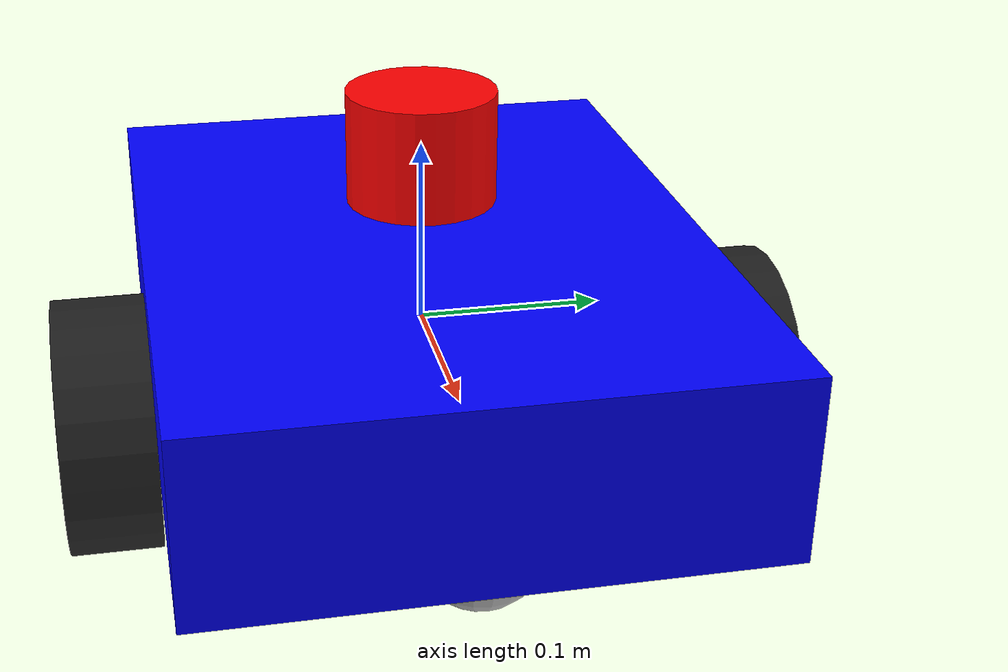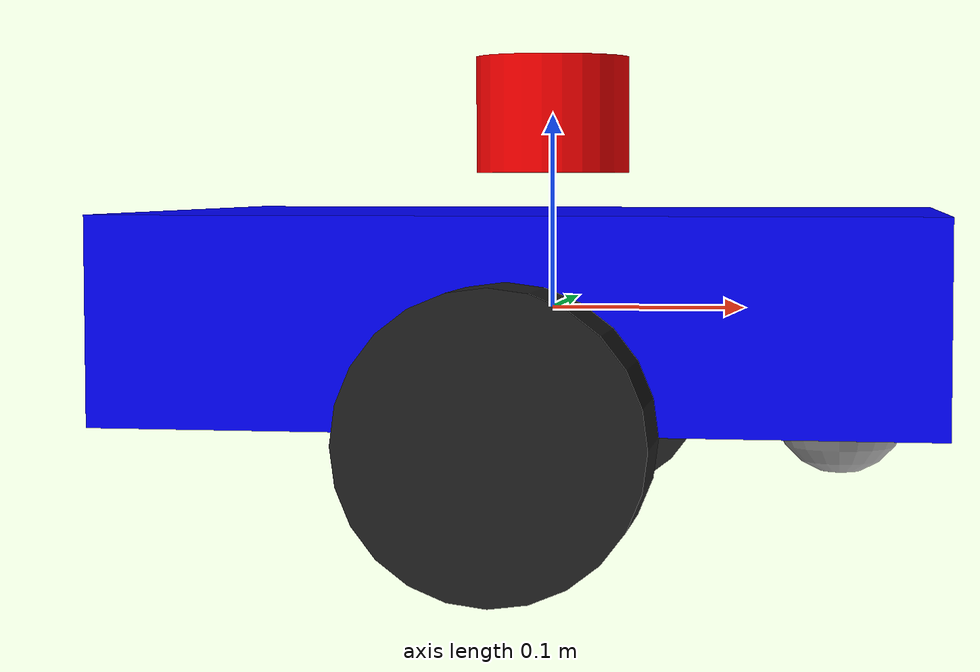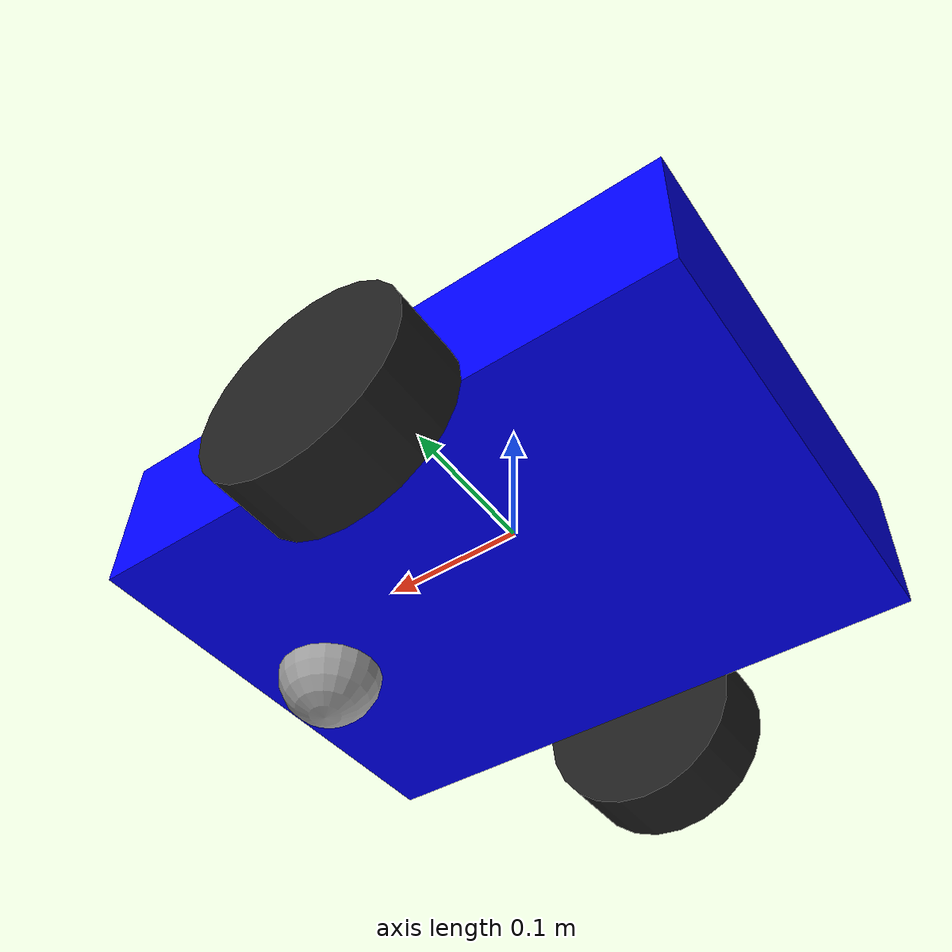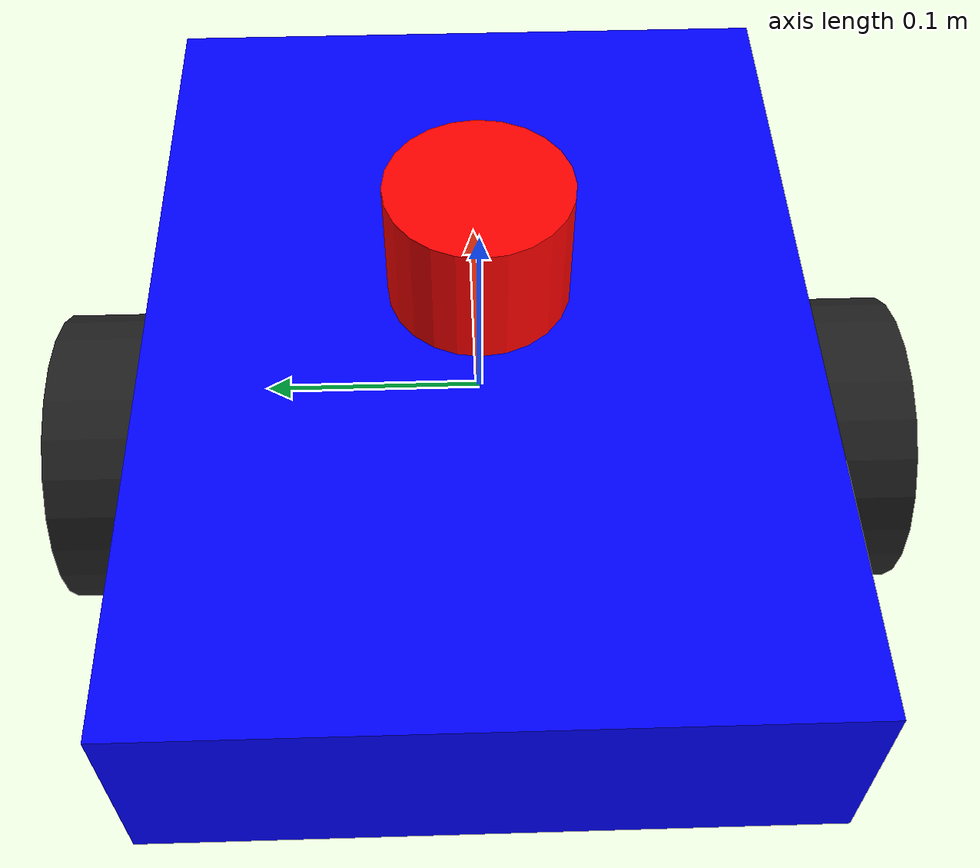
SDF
<sdf version='1.11'>
  <model name='mobile_robot'>
    <link name='base_link'>
      <inertial>
        <pose>0.0028301886792452828 0 0.0028301886792452841 0 0 0</pose>
        <mass>5.2999999999999998</mass>
        <inertia>
          <ixx>0.052407547169811317</ixx>
          <ixy>0</ixy>
          <ixz>0.00079245283018867922</ixz>
          <iyy>0.054615094339622638</iyy>
          <iyz>0</iyz>
          <izz>0.082407547169811329</izz>
        </inertia>
      </inertial>
      <collision name='base_link_collision'>
        <pose>0 0 0 0 0 0</pose>
        <geometry>
          <box>
            <size>0.40000000000000002 0.29999999999999999 0.10000000000000001</size>
          </box>
        </geometry>
      </collision>
      <collision name='base_link_fixed_joint_lump__caster_wheel_collision_1'>
        <pose>0.14999999999999999 0 -0.050000000000000003 0 0 0</pose>
        <geometry>
          <sphere>
            <radius>0.035000000000000003</radius>
          </sphere>
        </geometry>
      </collision>
      <collision name='base_link_fixed_joint_lump__lidar_link_collision_2'>
        <pose>0 0 0.10000000000000001 0 0 0</pose>
        <geometry>
          <cylinder>
            <length>0.059999999999999998</length>
            <radius>0.040000000000000001</radius>
          </cylinder>
        </geometry>
        <surface>
          <contact>
            <ode/>
          </contact>
          <friction>
            <ode/>
          </friction>
        </surface>
      </collision>
      <visual name='base_link_visual'>
        <pose>0 0 0 0 0 0</pose>
        <geometry>
          <box>
            <size>0.40000000000000002 0.29999999999999999 0.10000000000000001</size>
          </box>
        </geometry>
        <material>
          <diffuse>0 0 1 1</diffuse>
          <ambient>0 0 1 1</ambient>
        </material>
      </visual>
      <visual name='base_link_fixed_joint_lump__caster_wheel_visual_1'>
        <pose>0.14999999999999999 0 -0.050000000000000003 0 0 0</pose>
        <geometry>
          <sphere>
            <radius>0.035000000000000003</radius>
          </sphere>
        </geometry>
        <material>
          <diffuse>0.625 0.625 0.625 1</diffuse>
          <ambient>0.625 0.625 0.625 1</ambient>
        </material>
      </visual>
      <visual name='base_link_fixed_joint_lump__lidar_link_visual_2'>
        <pose>0 0 0.10000000000000001 0 0 0</pose>
        <geometry>
          <cylinder>
            <length>0.059999999999999998</length>
            <radius>0.040000000000000001</radius>
          </cylinder>
        </geometry>
        <material>
          <diffuse>1 0 0 1</diffuse>
          <ambient>1 0 0 1</ambient>
        </material>
      </visual>
      <sensor name='lidar' type='gpu_lidar'> <topic>/scan</topic>
        <update_rate>10</update_rate>
        <always_on>true</always_on>
        <visualize>true</visualize>
        <lidar>
          <scan>
            <horizontal>
              <samples>360</samples>
              <resolution>1</resolution>
              <min_angle>-3.14159</min_angle>
              <max_angle>3.14159</max_angle>
            </horizontal>
          </scan>
          <range>
            <min>0.12</min>
            <max>10</max>
            <resolution>0.01</resolution>
          </range>
        </lidar>
        <pose>0 0 0.14 0 0 0</pose>
      </sensor>
    </link>
    <joint name='left_wheel_joint' type='revolute'>
      <pose relative_to='base_link'>0 0.17499999999999999 -0.050000000000000003 -1.5708 0 0</pose>
      <parent>base_link</parent>
      <child>left_wheel</child>
      <axis>
        <xyz>0 0 1</xyz>
        <limit>
          <lower>-inf</lower>
          <upper>inf</upper>
        </limit>
        <dynamics>
          <spring_reference>0</spring_reference>
          <spring_stiffness>0</spring_stiffness>
        </dynamics>
      </axis>
    </joint>
    <link name='left_wheel'>
      <pose relative_to='left_wheel_joint'>0 0 0 0 0 0</pose>
      <inertial>
        <pose>0 0 0 0 0 0</pose>
        <mass>0.5</mass>
        <inertia>
          <ixx>0.001</ixx>
          <ixy>0</ixy>
          <ixz>0</ixz>
          <iyy>0.001</iyy>
          <iyz>0</iyz>
          <izz>0.001</izz>
        </inertia>
      </inertial>
      <collision name='left_wheel_collision'>
        <pose>0 0 0 0 0 0</pose>
        <geometry>
          <cylinder>
            <length>0.050000000000000003</length>
            <radius>0.070000000000000007</radius>
          </cylinder>
        </geometry>
      </collision>
      <visual name='left_wheel_visual'>
        <pose>0 0 0 0 0 0</pose>
        <geometry>
          <cylinder>
            <length>0.050000000000000003</length>
            <radius>0.070000000000000007</radius>
          </cylinder>
        </geometry>
        <material>
          <diffuse>0.125 0.125 0.125 1</diffuse>
          <ambient>0.125 0.125 0.125 1</ambient>
        </material>
      </visual>
    </link>
    <joint name='right_wheel_joint' type='revolute'>
      <pose relative_to='base_link'>0 -0.17499999999999999 -0.050000000000000003 -1.5708 0 0</pose>
      <parent>base_link</parent>
      <child>right_wheel</child>
      <axis>
        <xyz>0 0 1</xyz>
        <limit>
          <lower>-inf</lower>
          <upper>inf</upper>
        </limit>
        <dynamics>
          <spring_reference>0</spring_reference>
          <spring_stiffness>0</spring_stiffness>
        </dynamics>
      </axis>
    </joint>
    <link name='right_wheel'>
      <pose relative_to='right_wheel_joint'>0 0 0 0 0 0</pose>
      <inertial>
        <pose>0 0 0 0 0 0</pose>
        <mass>0.5</mass>
        <inertia>
          <ixx>0.001</ixx>
          <ixy>0</ixy>
          <ixz>0</ixz>
          <iyy>0.001</iyy>
          <iyz>0</iyz>
          <izz>0.001</izz>
        </inertia>
      </inertial>
      <collision name='right_wheel_collision'>
        <pose>0 0 0 0 0 0</pose>
        <geometry>
          <cylinder>
            <length>0.050000000000000003</length>
            <radius>0.070000000000000007</radius>
          </cylinder>
        </geometry>
      </collision>
      <visual name='right_wheel_visual'>
        <pose>0 0 0 0 0 0</pose>
        <geometry>
          <cylinder>
            <length>0.050000000000000003</length>
            <radius>0.070000000000000007</radius>
          </cylinder>
        </geometry>
        <material>
          <diffuse>0.125 0.125 0.125 1</diffuse>
          <ambient>0.125 0.125 0.125 1</ambient>
        </material>
      </visual>
    </link>
    <plugin name='gz::sim::systems::DiffDrive' filename='gz-sim-diff-drive-system'>
      <left_joint>left_wheel_joint</left_joint>
      <right_joint>right_wheel_joint</right_joint>
      <wheel_separation>0.35</wheel_separation>
      <wheel_radius>0.07</wheel_radius>
      <odom_publish_frequency>10</odom_publish_frequency>
      <topic>/cmd_vel</topic>
      <odom_topic>/odom</odom_topic>
      <frame_id>odom</frame_id>
      <child_frame_id>base_link</child_frame_id>
    </plugin>
    <frame name='caster_joint' attached_to='base_link'>
      <pose>0.14999999999999999 0 -0.050000000000000003 0 0 0</pose>
    </frame>
    <frame name='caster_wheel' attached_to='caster_joint'>
      <pose>0 0 0 0 0 0</pose>
    </frame>
    <frame name='lidar_joint' attached_to='base_link'>
      <pose>0 0 0.10000000000000001 0 0 0</pose>
    </frame>
    <frame name='lidar_link' attached_to='lidar_joint'>
      <pose>0 0 0 0 0 0</pose>
    </frame>
  </model>
</sdf>
